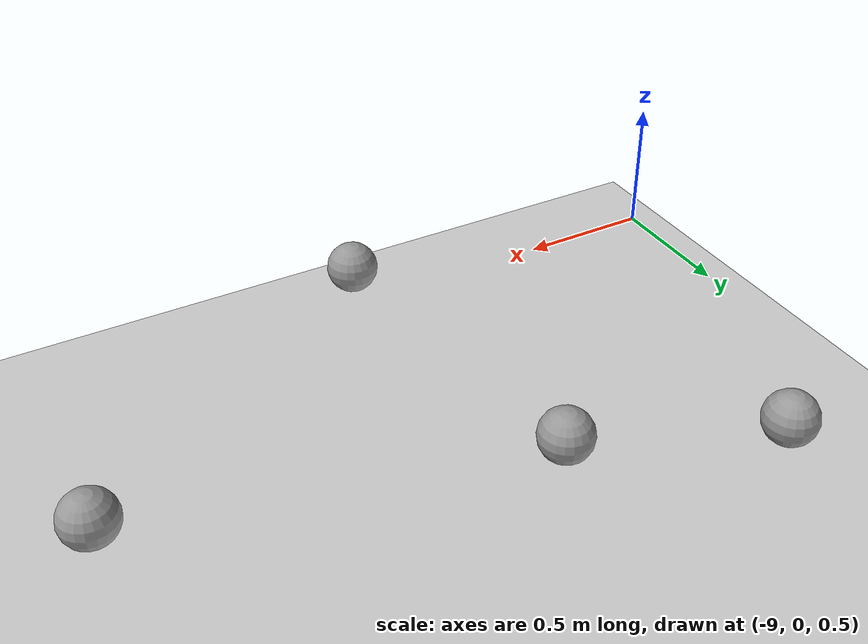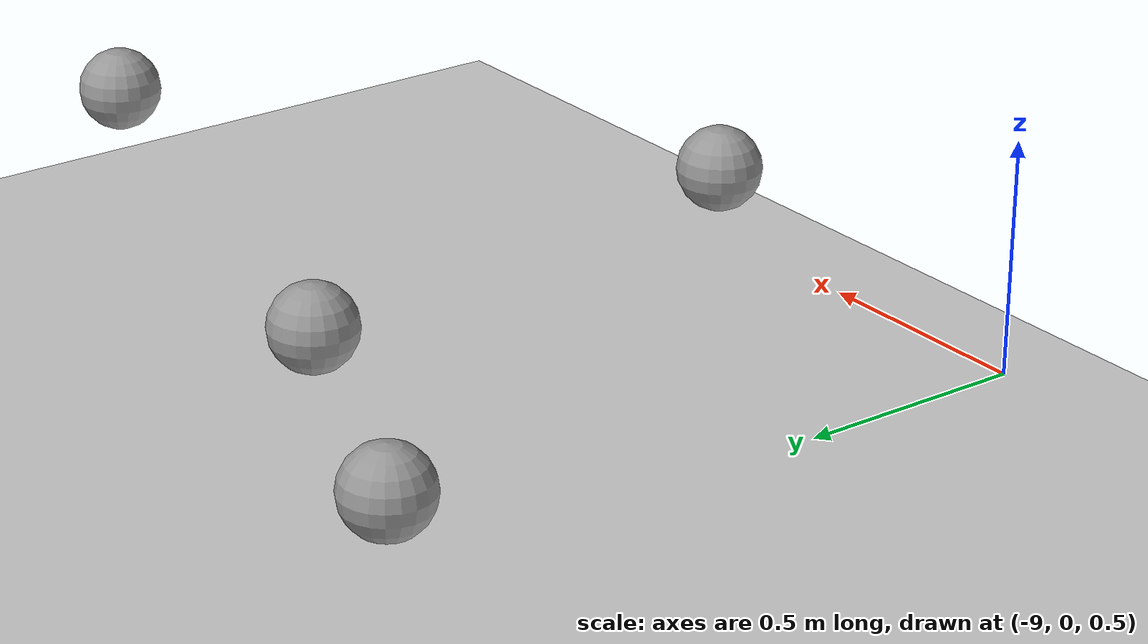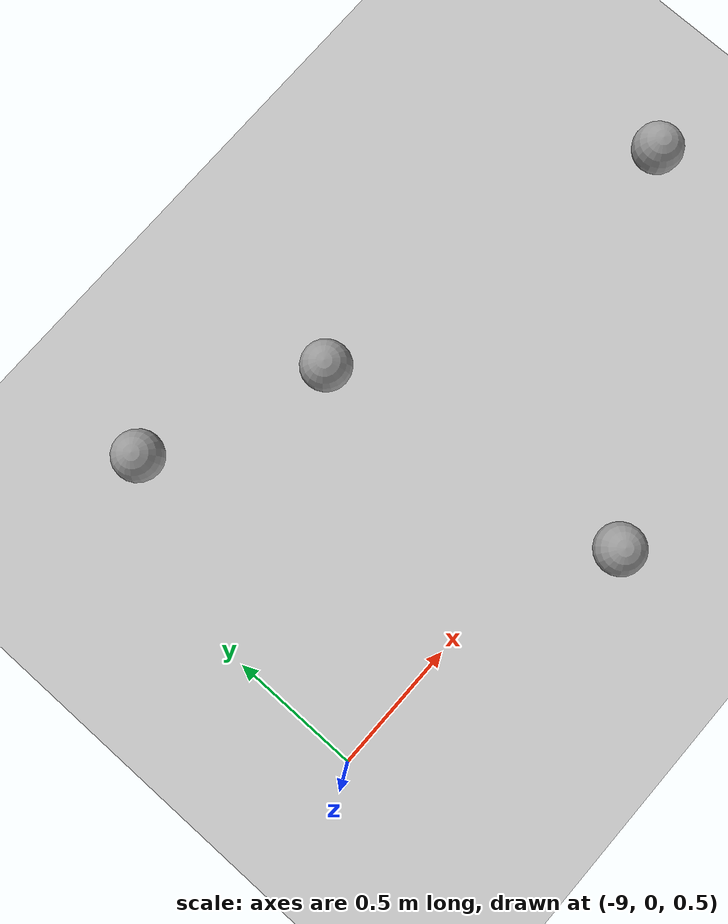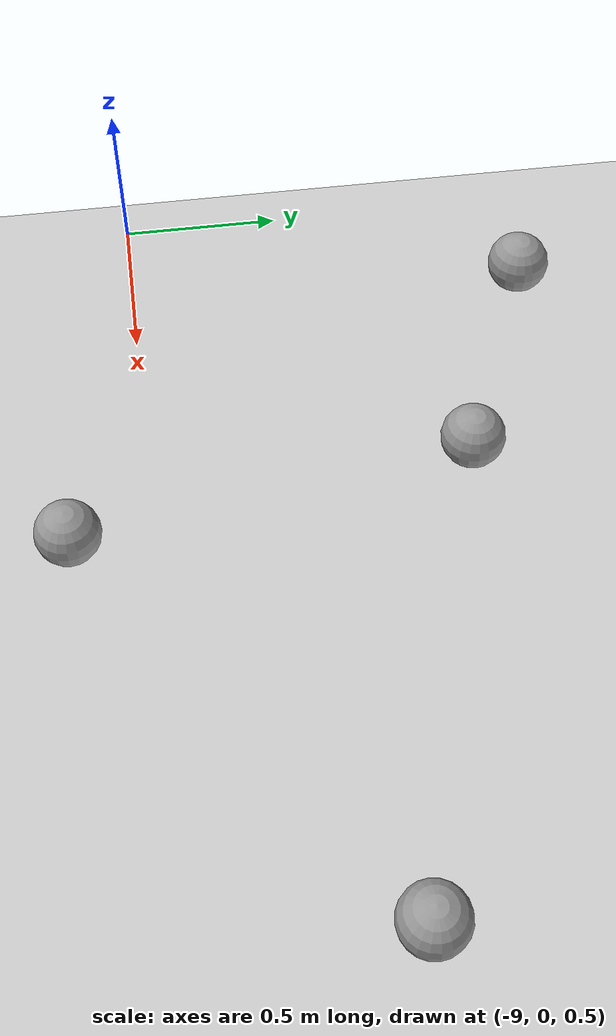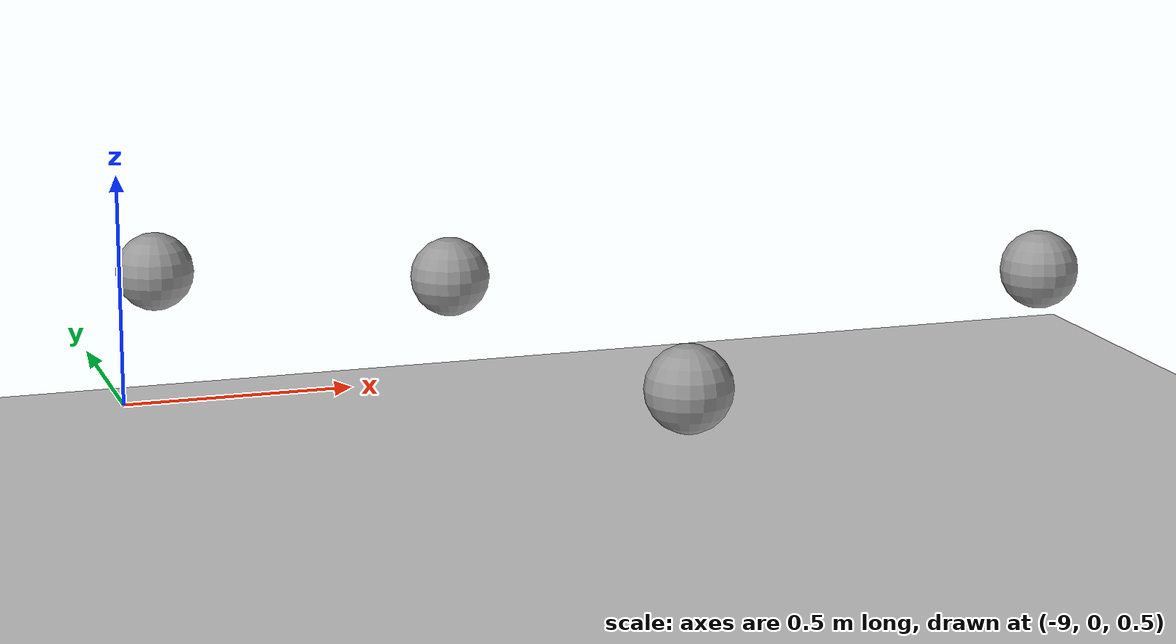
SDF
<sdf version="1.7">
 <world name="default">
  <model name="ground_plane">
   <static>1</static>
   <link name="link">
    <collision name="collision">
     <geometry><plane><normal>0 0 1</normal><size>100 100</size></plane></geometry>
     <surface>
      <contact><collide_bitmask>65535</collide_bitmask></contact>
      <friction><ode><mu>100</mu><mu2>50</mu2></ode></friction>
     </surface>
    </collision>
    <visual name="visual">
     <cast_shadows>0</cast_shadows>
     <geometry><plane><normal>0 0 1</normal><size>100 100</size></plane></geometry>
     <material>
      <script><uri>file://media/materials/scripts/gazebo.material</uri><name>Gazebo/Grey</name></script>
     </material>
    </visual>
   </link>
  </model>
  <model name="0.1unit_sphere_clone_20">
   <link name="link">
    <inertial>
     <mass>1</mass>
     <inertia><ixx>0.1</ixx><ixy>0</ixy><ixz>0</ixz><iyy>0.1</iyy><iyz>0</iyz><izz>0.1</izz></inertia>
    </inertial>
    <visual name="visual">
     <geometry><sphere><radius>0.1</radius></sphere></geometry>
     <material>
      <script><name>Gazebo/Grey</name><uri>file://media/materials/scripts/gazebo.material</uri></script>
      <shader type="pixel"><normal_map>__default__</normal_map></shader>
      <ambient>0.3 0.3 0.3 1</ambient>
      <diffuse>0.7 0.7 0.7 1</diffuse>
      <specular>0.01 0.01 0.01 1</specular>
      <emissive>0 0 0 1</emissive>
     </material>
    </visual>
    <collision name="collision">
     <geometry><sphere><radius>0.1</radius></sphere></geometry>
     <surface>
      <friction>
       <ode><mu>1</mu><mu2>1</mu2><fdir1>0 0 0</fdir1><slip1>0</slip1><slip2>0</slip2></ode>
       <torsional>
        <coefficient>1</coefficient>
        <patch_radius>0</patch_radius>
        <surface_radius>0</surface_radius>
        <use_patch_radius>1</use_patch_radius>
        <ode><slip>0</slip></ode>
       </torsional>
      </friction>
      <bounce><restitution_coefficient>0</restitution_coefficient><threshold>1e+06</threshold></bounce>
      <contact>
       <collide_without_contact>0</collide_without_contact>
       <collide_without_contact_bitmask>1</collide_without_contact_bitmask>
       <collide_bitmask>1</collide_bitmask>
       <ode>
        <soft_cfm>0</soft_cfm>
        <soft_erp>0.2</soft_erp>
        <kp>1e+13</kp>
        <kd>1</kd>
        <max_vel>0.01</max_vel>
        <min_depth>0</min_depth>
       </ode>
       <bullet>
        <split_impulse>1</split_impulse>
        <split_impulse_penetration_threshold>-0.01</split_impulse_penetration_threshold>
        <soft_cfm>0</soft_cfm>
        <soft_erp>0.2</soft_erp>
        <kp>1e+13</kp>
        <kd>1</kd>
       </bullet>
      </contact>
     </surface>
    </collision>
   </link>
   <static>0</static>
   <pose>-7.80227 -0.24423 0.5 0 -0 0</pose>
  </model>
  <model name="0.1unit_sphere_clone_21">
   <link name="link">
    <inertial>
     <mass>1</mass>
     <inertia><ixx>0.1</ixx><ixy>0</ixy><ixz>0</ixz><iyy>0.1</iyy><iyz>0</iyz><izz>0.1</izz></inertia>
    </inertial>
    <visual name="visual">
     <geometry><sphere><radius>0.1</radius></sphere></geometry>
     <material>
      <script><name>Gazebo/Grey</name><uri>file://media/materials/scripts/gazebo.material</uri></script>
      <shader type="pixel"><normal_map>__default__</normal_map></shader>
      <ambient>0.3 0.3 0.3 1</ambient>
      <diffuse>0.7 0.7 0.7 1</diffuse>
      <specular>0.01 0.01 0.01 1</specular>
      <emissive>0 0 0 1</emissive>
     </material>
    </visual>
    <collision name="collision">
     <geometry><sphere><radius>0.1</radius></sphere></geometry>
     <surface>
      <friction>
       <ode><mu>1</mu><mu2>1</mu2><fdir1>0 0 0</fdir1><slip1>0</slip1><slip2>0</slip2></ode>
       <torsional>
        <coefficient>1</coefficient>
        <patch_radius>0</patch_radius>
        <surface_radius>0</surface_radius>
        <use_patch_radius>1</use_patch_radius>
        <ode><slip>0</slip></ode>
       </torsional>
      </friction>
      <bounce><restitution_coefficient>0</restitution_coefficient><threshold>1e+06</threshold></bounce>
      <contact>
       <collide_without_contact>0</collide_without_contact>
       <collide_without_contact_bitmask>1</collide_without_contact_bitmask>
       <collide_bitmask>1</collide_bitmask>
       <ode>
        <soft_cfm>0</soft_cfm>
        <soft_erp>0.2</soft_erp>
        <kp>1e+13</kp>
        <kd>1</kd>
        <max_vel>0.01</max_vel>
        <min_depth>0</min_depth>
       </ode>
       <bullet>
        <split_impulse>1</split_impulse>
        <split_impulse_penetration_threshold>-0.01</split_impulse_penetration_threshold>
        <soft_cfm>0</soft_cfm>
        <soft_erp>0.2</soft_erp>
        <kp>1e+13</kp>
        <kd>1</kd>
       </bullet>
      </contact>
     </surface>
    </collision>
   </link>
   <static>0</static>
   <pose>-8.70134 1.29156 0.5 0 -0 0</pose>
  </model>
  <model name="0.1unit_sphere_clone_22">
   <link name="link">
    <inertial>
     <mass>1</mass>
     <inertia><ixx>0.1</ixx><ixy>0</ixy><ixz>0</ixz><iyy>0.1</iyy><iyz>0</iyz><izz>0.1</izz></inertia>
    </inertial>
    <visual name="visual">
     <geometry><sphere><radius>0.1</radius></sphere></geometry>
     <material>
      <script><name>Gazebo/Grey</name><uri>file://media/materials/scripts/gazebo.material</uri></script>
      <shader type="pixel"><normal_map>__default__</normal_map></shader>
      <ambient>0.3 0.3 0.3 1</ambient>
      <diffuse>0.7 0.7 0.7 1</diffuse>
      <specular>0.01 0.01 0.01 1</specular>
      <emissive>0 0 0 1</emissive>
     </material>
    </visual>
    <collision name="collision">
     <geometry><sphere><radius>0.1</radius></sphere></geometry>
     <surface>
      <friction>
       <ode><mu>1</mu><mu2>1</mu2><fdir1>0 0 0</fdir1><slip1>0</slip1><slip2>0</slip2></ode>
       <torsional>
        <coefficient>1</coefficient>
        <patch_radius>0</patch_radius>
        <surface_radius>0</surface_radius>
        <use_patch_radius>1</use_patch_radius>
        <ode><slip>0</slip></ode>
       </torsional>
      </friction>
      <bounce><restitution_coefficient>0</restitution_coefficient><threshold>1e+06</threshold></bounce>
      <contact>
       <collide_without_contact>0</collide_without_contact>
       <collide_without_contact_bitmask>1</collide_without_contact_bitmask>
       <collide_bitmask>1</collide_bitmask>
       <ode>
        <soft_cfm>0</soft_cfm>
        <soft_erp>0.2</soft_erp>
        <kp>1e+13</kp>
        <kd>1</kd>
        <max_vel>0.01</max_vel>
        <min_depth>0</min_depth>
       </ode>
       <bullet>
        <split_impulse>1</split_impulse>
        <split_impulse_penetration_threshold>-0.01</split_impulse_penetration_threshold>
        <soft_cfm>0</soft_cfm>
        <soft_erp>0.2</soft_erp>
        <kp>1e+13</kp>
        <kd>1</kd>
       </bullet>
      </contact>
     </surface>
    </collision>
   </link>
   <static>0</static>
   <pose>-6.54143 0.614011 0.5 0 -0 0</pose>
  </model>
  <model name="0.1unit_sphere_clone_29">
   <link name="link">
    <inertial>
     <mass>1</mass>
     <inertia><ixx>0.1</ixx><ixy>0</ixy><ixz>0</ixz><iyy>0.1</iyy><iyz>0</iyz><izz>0.1</izz></inertia>
    </inertial>
    <visual name="visual">
     <geometry><sphere><radius>0.1</radius></sphere></geometry>
     <material>
      <script><name>Gazebo/Grey</name><uri>file://media/materials/scripts/gazebo.material</uri></script>
      <shader type="pixel"><normal_map>__default__</normal_map></shader>
      <ambient>0.3 0.3 0.3 1</ambient>
      <diffuse>0.7 0.7 0.7 1</diffuse>
      <specular>0.01 0.01 0.01 1</specular>
      <emissive>0 0 0 1</emissive>
     </material>
    </visual>
    <collision name="collision">
     <geometry><sphere><radius>0.1</radius></sphere></geometry>
     <surface>
      <friction>
       <ode><mu>1</mu><mu2>1</mu2><fdir1>0 0 0</fdir1><slip1>0</slip1><slip2>0</slip2></ode>
       <torsional>
        <coefficient>1</coefficient>
        <patch_radius>0</patch_radius>
        <surface_radius>0</surface_radius>
        <use_patch_radius>1</use_patch_radius>
        <ode><slip>0</slip></ode>
       </torsional>
      </friction>
      <bounce><restitution_coefficient>0</restitution_coefficient><threshold>1e+06</threshold></bounce>
      <contact>
       <collide_without_contact>0</collide_without_contact>
       <collide_without_contact_bitmask>1</collide_without_contact_bitmask>
       <collide_bitmask>1</collide_bitmask>
       <ode>
        <soft_cfm>0</soft_cfm>
        <soft_erp>0.2</soft_erp>
        <kp>1e+13</kp>
        <kd>1</kd>
        <max_vel>0.01</max_vel>
        <min_depth>0</min_depth>
       </ode>
       <bullet>
        <split_impulse>1</split_impulse>
        <split_impulse_penetration_threshold>-0.01</split_impulse_penetration_threshold>
        <soft_cfm>0</soft_cfm>
        <soft_erp>0.2</soft_erp>
        <kp>1e+13</kp>
        <kd>1</kd>
       </bullet>
      </contact>
     </surface>
    </collision>
   </link>
   <static>0</static>
   <pose>-8 1 0.5 0 -0 0</pose>
  </model>
 </world>
</sdf>
